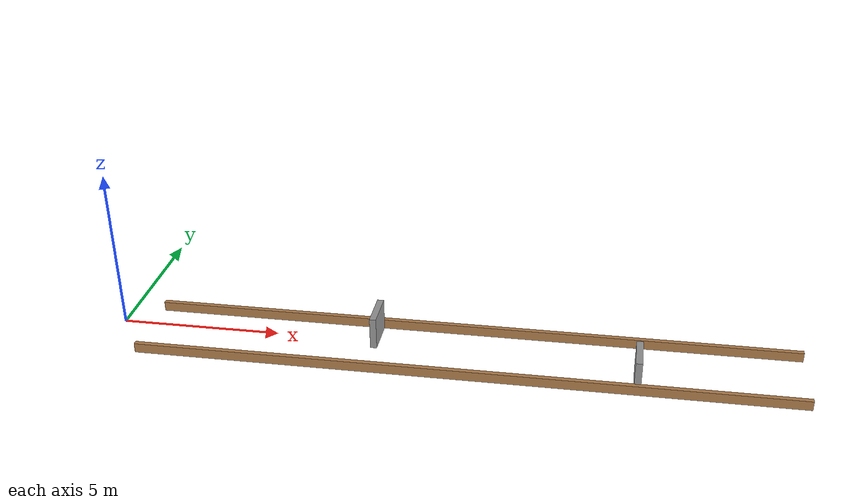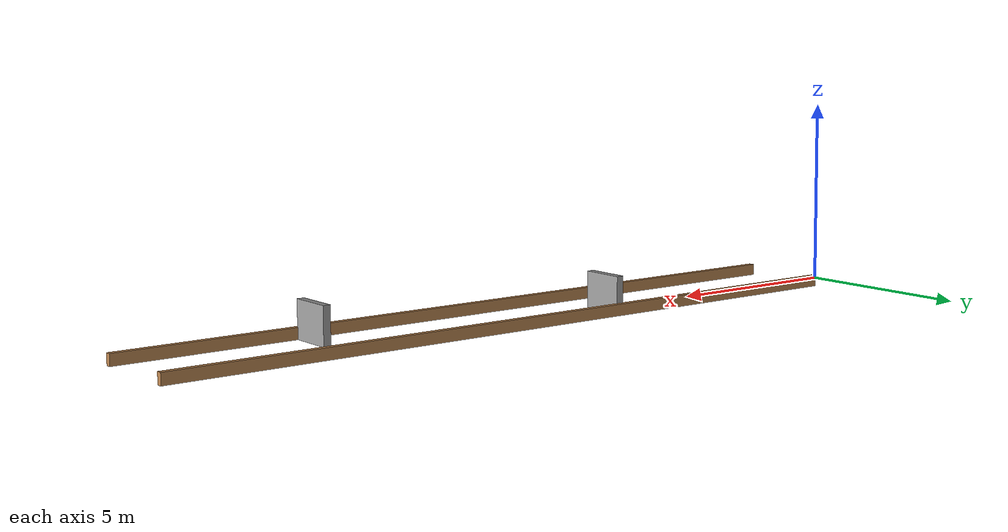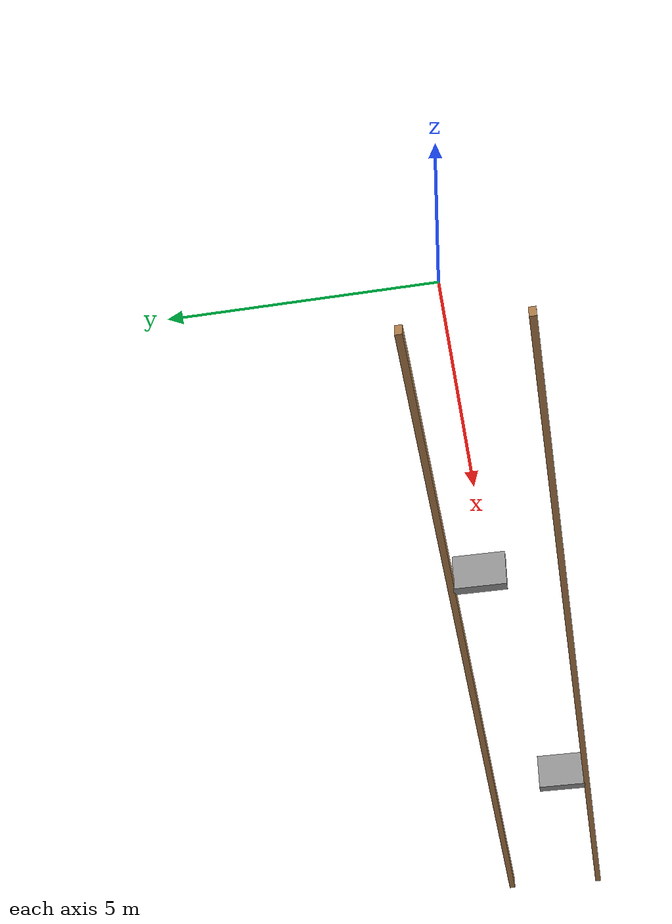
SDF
<?xml version='1.0'?>
<sdf version='1.7'>
  <model name='obstacles'>
    <link name='Wall_1'>
      <pose>11 -1.6 0 0 -0 0</pose>
      <self_collide>0</self_collide>
      <enable_wind>0</enable_wind>
      <kinematic>0</kinematic>
      <gravity>1</gravity>
      <inertial>
        <mass>1</mass>
        <pose>0 0 0 0 -0 0</pose>
        <inertia>
          <ixx>1</ixx>
          <ixy>0</ixy>
          <ixz>0</ixz>
          <iyy>1</iyy>
          <iyz>0</iyz>
          <izz>1</izz>
        </inertia>
      </inertial>
      <visual name='Wall_1_Visual'>
        <pose>0 0 0.15 0 -0 0</pose>
        <geometry>
          <box>
            <size>20.03 0.15 0.3</size>
          </box>
        </geometry>
        <material>
          <script>
            <uri>file://media/materials/scripts/gazebo.material</uri>
            <name>Gazebo/Wood</name>
          </script>
          <ambient>1 0.765 0.306 1</ambient>
          <shader type='pixel'>
            <normal_map>__default__</normal_map>
          </shader>
          <diffuse>1 1 1 1</diffuse>
          <specular>0.2 0.2 0.2 1</specular>
          <emissive>0 0 0 1</emissive>
        </material>
        <meta>
          <layer>0</layer>
        </meta>
        <transparency>0</transparency>
        <cast_shadows>1</cast_shadows>
      </visual>
      <collision name='Wall_1_Collision'>
        <laser_retro>0</laser_retro>
        <max_contacts>10</max_contacts>
        <pose>0 0 0.15 0 -0 0</pose>
        <geometry>
          <box>
            <size>10 0.15 0.3</size>
          </box>
        </geometry>
        <surface>
          <friction>
            <ode>
              <mu>1</mu>
              <mu2>1</mu2>
              <fdir1>0 0 0</fdir1>
              <slip1>0</slip1>
              <slip2>0</slip2>
            </ode>
            <torsional>
              <coefficient>1</coefficient>
              <patch_radius>0</patch_radius>
              <surface_radius>0</surface_radius>
              <use_patch_radius>1</use_patch_radius>
              <ode>
                <slip>0</slip>
              </ode>
            </torsional>
          </friction>
          <bounce>
            <restitution_coefficient>0</restitution_coefficient>
            <threshold>1e+06</threshold>
          </bounce>
          <contact>
            <collide_without_contact>0</collide_without_contact>
            <collide_without_contact_bitmask>1</collide_without_contact_bitmask>
            <collide_bitmask>1</collide_bitmask>
            <ode>
              <soft_cfm>0</soft_cfm>
              <soft_erp>0.2</soft_erp>
              <kp>1e+13</kp>
              <kd>1</kd>
              <max_vel>0.01</max_vel>
              <min_depth>0</min_depth>
            </ode>
            <bullet>
              <split_impulse>1</split_impulse>
              <split_impulse_penetration_threshold>-0.01</split_impulse_penetration_threshold>
              <soft_cfm>0</soft_cfm>
              <soft_erp>0.2</soft_erp>
              <kp>1e+13</kp>
              <kd>1</kd>
            </bullet>
          </contact>
        </surface>
      </collision>
    </link>
    <link name='Wall_1_clone'>
      <pose>11 0.9 0 0 -0 0</pose>
      <self_collide>0</self_collide>
      <enable_wind>0</enable_wind>
      <kinematic>0</kinematic>
      <gravity>1</gravity>
      <inertial>
        <mass>1</mass>
        <pose>0 0 0 0 -0 0</pose>
        <inertia>
          <ixx>1</ixx>
          <ixy>0</ixy>
          <ixz>0</ixz>
          <iyy>1</iyy>
          <iyz>0</iyz>
          <izz>1</izz>
        </inertia>
      </inertial>
      <visual name='Wall_1_Visual'>
        <pose>0 0 0.15 0 -0 0</pose>
        <geometry>
          <box>
            <size>20 0.15 0.3</size>
          </box>
        </geometry>
        <material>
          <script>
            <uri>file://media/materials/scripts/gazebo.material</uri>
            <name>Gazebo/Wood</name>
          </script>
          <ambient>1 0.765 0.306 1</ambient>
          <shader type='pixel'>
            <normal_map>__default__</normal_map>
          </shader>
          <diffuse>1 1 1 1</diffuse>
          <specular>0.2 0.2 0.2 1</specular>
          <emissive>0 0 0 1</emissive>
        </material>
        <meta>
          <layer>0</layer>
        </meta>
        <transparency>0</transparency>
        <cast_shadows>1</cast_shadows>
      </visual>
      <collision name='Wall_1_Collision'>
        <laser_retro>0</laser_retro>
        <max_contacts>10</max_contacts>
        <pose>0 0 0.15 0 -0 0</pose>
        <geometry>
          <box>
            <size>10 0.15 0.3</size>
          </box>
        </geometry>
        <surface>
          <friction>
            <ode>
              <mu>1</mu>
              <mu2>1</mu2>
              <fdir1>0 0 0</fdir1>
              <slip1>0</slip1>
              <slip2>0</slip2>
            </ode>
            <torsional>
              <coefficient>1</coefficient>
              <patch_radius>0</patch_radius>
              <surface_radius>0</surface_radius>
              <use_patch_radius>1</use_patch_radius>
              <ode>
                <slip>0</slip>
              </ode>
            </torsional>
          </friction>
          <bounce>
            <restitution_coefficient>0</restitution_coefficient>
            <threshold>1e+06</threshold>
          </bounce>
          <contact>
            <collide_without_contact>0</collide_without_contact>
            <collide_without_contact_bitmask>1</collide_without_contact_bitmask>
            <collide_bitmask>1</collide_bitmask>
            <ode>
              <soft_cfm>0</soft_cfm>
              <soft_erp>0.2</soft_erp>
              <kp>1e+13</kp>
              <kd>1</kd>
              <max_vel>0.01</max_vel>
              <min_depth>0</min_depth>
            </ode>
            <bullet>
              <split_impulse>1</split_impulse>
              <split_impulse_penetration_threshold>-0.01</split_impulse_penetration_threshold>
              <soft_cfm>0</soft_cfm>
              <soft_erp>0.2</soft_erp>
              <kp>1e+13</kp>
              <kd>1</kd>
            </bullet>
          </contact>
        </surface>
      </collision>
    </link>
    <link name='link_0'>
      <inertial>
        <mass>1</mass>
        <inertia>
          <ixx>0.166667</ixx>
          <ixy>0</ixy>
          <ixz>0</ixz>
          <iyy>0.166667</iyy>
          <iyz>0</iyz>
          <izz>0.166667</izz>
        </inertia>
        <pose>0 0 0 0 -0 0</pose>
      </inertial>
      <pose>8.1 0.25 0.5 0 -0 0</pose>
      <gravity>1</gravity>
      <self_collide>0</self_collide>
      <kinematic>0</kinematic>
      <enable_wind>0</enable_wind>
      <visual name='visual'>
        <pose>0 0 0 0 -0 0</pose>
        <geometry>
          <box>
            <size>0.2 1.2 1</size>
          </box>
        </geometry>
        <material>
          <lighting>1</lighting>
          <script>
            <uri>file://media/materials/scripts/gazebo.material</uri>
            <name>Gazebo/Grey</name>
          </script>
          <shader type='pixel'>
            <normal_map>__default__</normal_map>
          </shader>
          <ambient>0.3 0.3 0.3 1</ambient>
          <diffuse>0.7 0.7 0.7 1</diffuse>
          <specular>0.01 0.01 0.01 1</specular>
          <emissive>0 0 0 1</emissive>
        </material>
        <transparency>0</transparency>
        <cast_shadows>1</cast_shadows>
      </visual>
      <collision name='collision'>
        <laser_retro>0</laser_retro>
        <max_contacts>10</max_contacts>
        <pose>0 0 0 0 -0 0</pose>
        <geometry>
          <box>
            <size>0.2 1.2 1</size>
          </box>
        </geometry>
        <surface>
          <friction>
            <ode>
              <mu>1</mu>
              <mu2>1</mu2>
              <fdir1>0 0 0</fdir1>
              <slip1>0</slip1>
              <slip2>0</slip2>
            </ode>
            <torsional>
              <coefficient>1</coefficient>
              <patch_radius>0</patch_radius>
              <surface_radius>0</surface_radius>
              <use_patch_radius>1</use_patch_radius>
              <ode>
                <slip>0</slip>
              </ode>
            </torsional>
          </friction>
          <bounce>
            <restitution_coefficient>0</restitution_coefficient>
            <threshold>1e+06</threshold>
          </bounce>
          <contact>
            <collide_without_contact>0</collide_without_contact>
            <collide_without_contact_bitmask>1</collide_without_contact_bitmask>
            <collide_bitmask>1</collide_bitmask>
            <ode>
              <soft_cfm>0</soft_cfm>
              <soft_erp>0.2</soft_erp>
              <kp>1e+13</kp>
              <kd>1</kd>
              <max_vel>0.01</max_vel>
              <min_depth>0</min_depth>
            </ode>
            <bullet>
              <split_impulse>1</split_impulse>
              <split_impulse_penetration_threshold>-0.01</split_impulse_penetration_threshold>
              <soft_cfm>0</soft_cfm>
              <soft_erp>0.2</soft_erp>
              <kp>1e+13</kp>
              <kd>1</kd>
            </bullet>
          </contact>
        </surface>
      </collision>
    </link>
    <link name='link_0_clone'>
      <inertial>
        <mass>1</mass>
        <inertia>
          <ixx>0.166667</ixx>
          <ixy>0</ixy>
          <ixz>0</ixz>
          <iyy>0.166667</iyy>
          <iyz>0</iyz>
          <izz>0.166667</izz>
        </inertia>
        <pose>0 0 0 0 -0 0</pose>
      </inertial>
      <pose>16.1 -0.95 0.5 0 -0 0</pose>
      <gravity>1</gravity>
      <self_collide>0</self_collide>
      <kinematic>0</kinematic>
      <enable_wind>0</enable_wind>
      <visual name='visual'>
        <pose>0 0 0 0 -0 0</pose>
        <geometry>
          <box>
            <size>0.2 1.2 1</size>
          </box>
        </geometry>
        <material>
          <lighting>1</lighting>
          <script>
            <uri>file://media/materials/scripts/gazebo.material</uri>
            <name>Gazebo/Grey</name>
          </script>
          <shader type='pixel'>
            <normal_map>__default__</normal_map>
          </shader>
          <ambient>0.3 0.3 0.3 1</ambient>
          <diffuse>0.7 0.7 0.7 1</diffuse>
          <specular>0.01 0.01 0.01 1</specular>
          <emissive>0 0 0 1</emissive>
        </material>
        <transparency>0</transparency>
        <cast_shadows>1</cast_shadows>
      </visual>
      <collision name='collision'>
        <laser_retro>0</laser_retro>
        <max_contacts>10</max_contacts>
        <pose>0 0 0 0 -0 0</pose>
        <geometry>
          <box>
            <size>0.2 1.2 1</size>
          </box>
        </geometry>
        <surface>
          <friction>
            <ode>
              <mu>1</mu>
              <mu2>1</mu2>
              <fdir1>0 0 0</fdir1>
              <slip1>0</slip1>
              <slip2>0</slip2>
            </ode>
            <torsional>
              <coefficient>1</coefficient>
              <patch_radius>0</patch_radius>
              <surface_radius>0</surface_radius>
              <use_patch_radius>1</use_patch_radius>
              <ode>
                <slip>0</slip>
              </ode>
            </torsional>
          </friction>
          <bounce>
            <restitution_coefficient>0</restitution_coefficient>
            <threshold>1e+06</threshold>
          </bounce>
          <contact>
            <collide_without_contact>0</collide_without_contact>
            <collide_without_contact_bitmask>1</collide_without_contact_bitmask>
            <collide_bitmask>1</collide_bitmask>
            <ode>
              <soft_cfm>0</soft_cfm>
              <soft_erp>0.2</soft_erp>
              <kp>1e+13</kp>
              <kd>1</kd>
              <max_vel>0.01</max_vel>
              <min_depth>0</min_depth>
            </ode>
            <bullet>
              <split_impulse>1</split_impulse>
              <split_impulse_penetration_threshold>-0.01</split_impulse_penetration_threshold>
              <soft_cfm>0</soft_cfm>
              <soft_erp>0.2</soft_erp>
              <kp>1e+13</kp>
              <kd>1</kd>
            </bullet>
          </contact>
        </surface>
      </collision>
    </link>
    <static>1</static>
    <allow_auto_disable>1</allow_auto_disable>
  </model>
</sdf>
